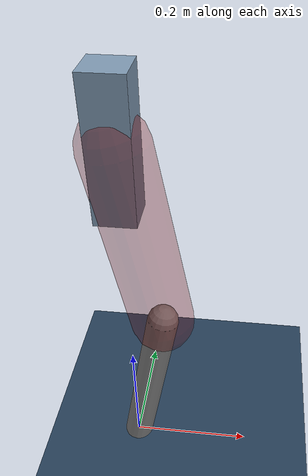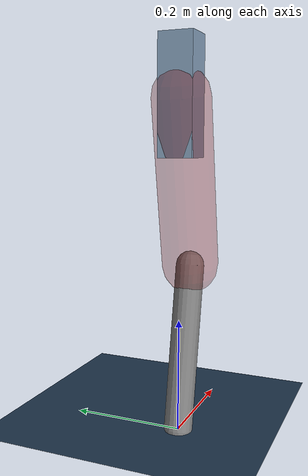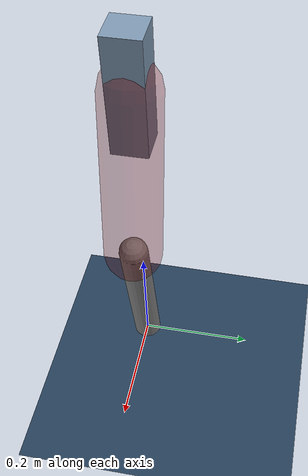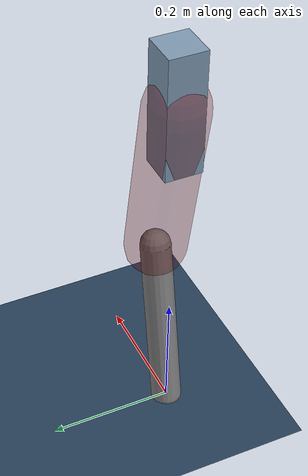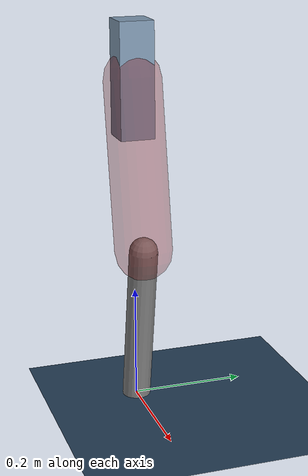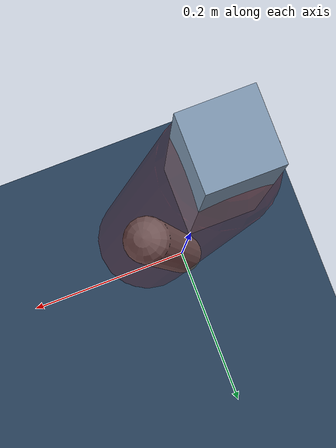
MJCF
<mujoco model="Hopper2D">
	<compiler inertiafromgeom="true" angle="radian" />
	<option timestep="0.001" integrator="implicit" cone="elliptic" solver="Newton" tolerance="1e-10" />

	<default>
		<geom contype="1" conaffinity="1" condim="3" friction="2 0.005 0.0001" solref="0.005 1" />
		<joint limited="true" damping="0.1" />
	</default>

	<asset>
		<texture name="skybox" type="skybox" builtin="gradient" rgb1=".4 .6 .8" rgb2="0 0 0" width="800" height="800" />
		<texture name="grid" type="2d" builtin="checker" rgb1=".1 .2 .3" rgb2=".2 .3 .4" width="300" height="300" mark="edge" markrgb=".2 .3 .4" />
		<material name="ground" texture="grid" texrepeat="1 1" texuniform="true" reflectance="0.1" />
		<material name="leg" rgba="0.5 0.6 0.7 1" />
	</asset>

	<worldbody>

		<geom name="floor" type="plane" size="5 5 0.25" material="ground" />

		<light directional="false" diffuse="0.8 0.8 0.8" specular="0.3 0.3 0.3" pos="0 0 2" dir="0 0 -1" />
		<light mode="targetbodycom" target="base" directional="false" diffuse="0.8 0.8 0.8" specular="0.3 0.3 0.3" pos="0 0 2" dir="0 0 -1" />

		<camera name="fixed" pos="0 -2 1" xyaxes="1 0 0 0 0 1" />
		<camera name="tracking" mode="trackcom" pos="0 -3 1" />

		<body name="root" pos="0 0 0.5801146140380105">
			<joint name="slide_x" type="slide" axis="1 0 0" range="-100 100" />
			<joint name="slide_z" type="slide" axis="0 0 1" range="0 10" />

			<body name="base" pos="0 0 0">
				<geom name="torso" type="box" size="0.03 0.03 0.1" mass="2.033" material="leg" />

				<body name="link1" pos="0 0 0" euler="0 1.3866923638718591 0">
					<joint type="hinge" axis="0 -1 0" pos="0 0 0" name="hinge1" limited="true" range="-3.14 3.14" stiffness="0" damping="0.1" />
					<geom name="thigh" type="capsule" fromto="0 0 0 0.2954595601978115 0 0" size="0.05" rgba="0.5 0 0 0.3" mass="0.9764948565143099" />

					<body name="link2" pos="0.2954595601978115 0 0" euler="0 0.3687163722484551 0">
						<joint type="hinge" axis="0 -1 0" pos="0 0 0" name="hinge2" limited="true" range="-3.14 3.14" stiffness="0" damping="0.1" />
						<geom name="shank" type="capsule" fromto="0 0 0 0.29465505384019897 0 0" size="0.025" mass="0.47908954845617907" />

					</body>
				</body>
			</body>
		</body>
	</worldbody>

	<actuator>
		<motor name="torque1" joint="hinge1" ctrlrange="-85.77919150047083 85.77919150047083" ctrllimited="true" gear="1" />
		<motor name="torque2" joint="hinge2" ctrlrange="-22.07701139956713 22.07701139956713" ctrllimited="true" gear="1" />
	</actuator>
</mujoco>
